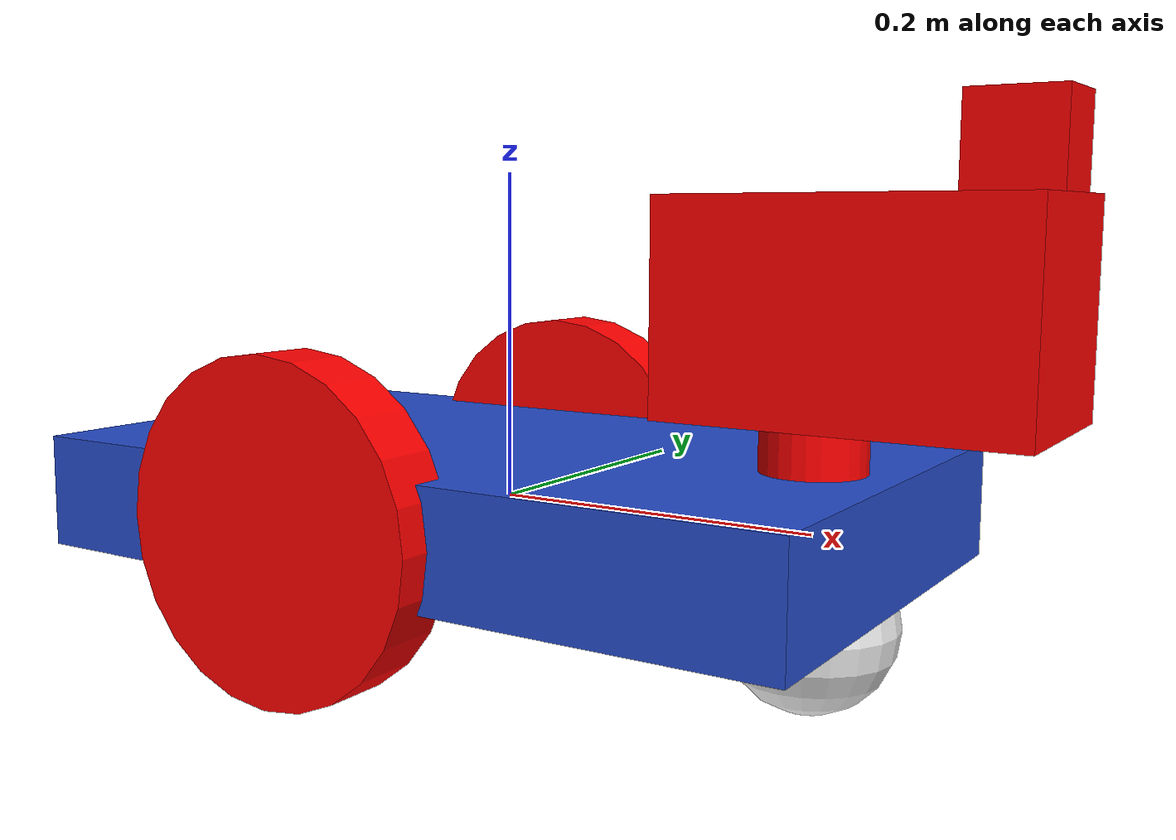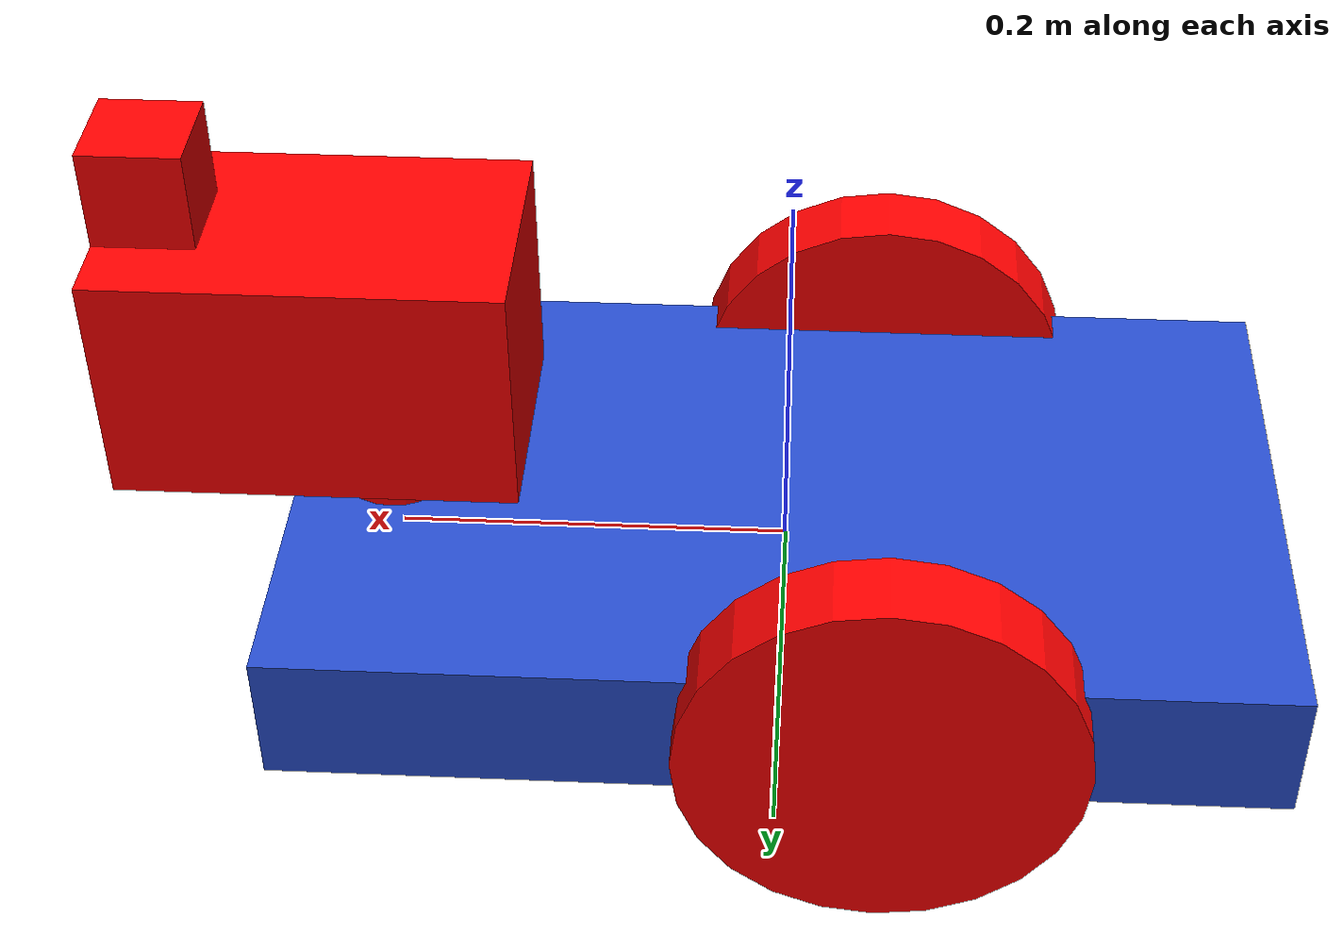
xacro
<?xml version="1.0"?>
<robot xmlns:xacro="http://www.ros.org/wiki/xacro" name="robot_xacro">
  <xacro:include filename="$(find exp_assignment2)/urdf/robot.gazebo" />

  <xacro:property name="length_wheel" value="0.04" />
  <xacro:property name="radius_wheel" value="0.1" />
  <xacro:property name="neck_length" value="0.05" />
  <xacro:property name="neck_radius" value="0.03" />

  <xacro:macro name="default_inertial" params="mass">
    <inertial>
      <mass value="${mass}" />
      <origin rpy="0 1.5707 1.5707" xyz="0 0 0" />
      <inertia ixx="0.000526666666667" ixy="0" ixz="0" iyy="0.000526666666667" iyz="0" izz="0.001" />
    </inertial>
  </xacro:macro>

  <xacro:macro name="wheel_geometry">
    <geometry>
      <cylinder length="${length_wheel}" radius="${radius_wheel}" />
    </geometry>
  </xacro:macro>

  <link name="link_chassis">
    <!-- pose and inertial -->
    <pose>0 0 0.1 0 0 0</pose>
    <inertial>
      <mass value="5" />
      <origin rpy="0 0 0" xyz="0 0 0.1" />
      <inertia ixx="0.0395416666667" ixy="0" ixz="0" iyy="0.106208333333" iyz="0" izz="0.106208333333" />
    </inertial>
    <!-- body -->
    <collision name="collision_chassis">
      <geometry>
        <box size="0.5 0.3 0.07" />
      </geometry>
    </collision>
    <visual>
      <origin rpy="0 0 0" xyz="0 0 0" />
      <geometry>
        <box size="0.5 0.3 0.07" />
      </geometry>
      <material name="blue" />
    </visual>
    <!-- caster front -->
    <collision name="caster_front_collision">
      <origin rpy=" 0 0 0" xyz="0.35 0 -0.05" />
      <geometry>
        <sphere radius="0.05" />
      </geometry>
    </collision>
    <visual name="caster_front_visual">
      <origin rpy=" 0 0 0" xyz="0.2 0 -0.05" />
      <geometry>
        <sphere radius="0.05" />
      </geometry>
    </visual>
  </link>

  <link name="link_right_wheel">
    <xacro:default_inertial mass="0.2" />
    <collision name="link_right_wheel_collision">
      <origin rpy="0 1.5707 1.5707" xyz="0 0 0" />
      <xacro:wheel_geometry />
    </collision>
    <visual name="link_right_wheel_visual">
      <origin rpy="0 1.5707 1.5707" xyz="0 0 0" />
      <xacro:wheel_geometry />
      <material name="red" />
    </visual>
  </link>

  <link name="link_left_wheel">
    <xacro:default_inertial mass="0.2" />
    <collision name="link_left_wheel_collision">
      <origin rpy="0 1.5707 1.5707" xyz="0 0 0" />
      <xacro:wheel_geometry />
    </collision>
    <visual name="link_left_wheel_visual">
      <origin rpy="0 1.5707 1.5707" xyz="0 0 0" />
      <xacro:wheel_geometry />
      <material name="red" />
    </visual>
  </link>

  <joint name="joint_right_wheel" type="continuous">
    <origin rpy="0 0 0" xyz="-0.05 0.15 0" />
    <child link="link_right_wheel" />
    <parent link="link_chassis" />
    <axis rpy="0 0 0" xyz="0 1 0" />
    <limit effort="10000" velocity="1000" />
    <joint_properties damping="1.0" friction="1.0" />
  </joint>

  <joint name="joint_left_wheel" type="continuous">
    <origin rpy="0 0 0" xyz="-0.05 -0.15 0" />
    <child link="link_left_wheel" />
    <parent link="link_chassis" />
    <axis rpy="0 0 0" xyz="0 1 0" />
    <limit effort="10000" velocity="1000" />
    <joint_properties damping="1.0" friction="1.0" />
  </joint>

  <link name="neck_link">
    <xacro:default_inertial mass="0.05" />
    <visual>
      <origin xyz="0 0 ${neck_length/2}" rpy="0 0 0" />
      <geometry>
        <cylinder length="${neck_length}" radius="${neck_radius}" />
      </geometry>
      <material name="red" />
    </visual>

    <collision>
      <origin xyz="0 0 ${neck_length/2}" rpy="0 0 0" />
      <geometry>
        <cylinder length="${neck_length}" radius="${neck_radius}" />
      </geometry>
    </collision>
  </link>

  <joint name="neck_joint" type="fixed">
    <axis xyz="0 1 0" />
    <origin xyz="0.2 0.0 0.015" rpy="0 0 0" />
    <parent link="link_chassis" />
    <child link="neck_link" />
  </joint>

  <!-- head definition -->

  <link name="head_link">
    <xacro:default_inertial mass="0.2" />
    <collision>
      <origin xyz="0 0 0.06" rpy="0 0 0" /> <!-- frame moved to the base of the head -->
      <geometry>
        <box size="0.2 0.12 0.12" />
      </geometry>
    </collision>
    <visual>
      <origin xyz="0 0 0.06" rpy="0 0 0" /> <!-- frame moved to the base of the head -->
      <geometry>
        <box size="0.2 0.12 0.12" />
      </geometry>
      <material name="red" />
    </visual>
  </link>

  <joint name="head_joint" type="revolute">
    <axis xyz="0 0 1" />
    <limit effort="1000.0" lower="-1.8" upper="1.8" velocity="0.5" />
    <origin rpy="0 0 0" xyz="0.03 0 ${neck_length}" />
    <parent link="neck_link" />
    <child link="head_link" />
  </joint>

  <!-- transmission -->

  <transmission name="head_joint_trans">
    <type>transmission_interface/SimpleTransmission</type>
    <joint name="head_joint">
      <hardwareInterface>hardware_interface/EffortJointInterface</hardwareInterface>
    </joint>
    <actuator name="motor1">
      <hardwareInterface>hardware_interface/EffortJointInterface</hardwareInterface>
      <mechanicalInterface>1</mechanicalInterface>
    </actuator>
  </transmission>

  <link name="camera_link">
    <collision>
      <origin xyz="0 0 0" rpy="0 0 0" />
      <geometry>
        <box size="0.05 0.05 0.05" />
      </geometry>
    </collision>
    <visual>
      <origin xyz="0 0 0" rpy="0 0 0" />
      <geometry>
        <box size="0.05 0.05 0.05" />
      </geometry>
      <material name="red">
        <color rgba="1 0 0 1" />
      </material>
    </visual>
    <inertial>
      <mass value="1e-5" />
      <origin xyz="0 0 0" rpy="0 0 0" />
      <inertia ixx="1e-6" ixy="0" ixz="0" iyy="1e-6" iyz="0" izz="1e-6" />
    </inertial>
  </link>

  <joint name="camera_joint" type="fixed">
    <axis xyz="0 1 0" />
    <origin xyz="0.075 0 0.145" rpy="0 0 0" />
    <parent link="head_link" />
    <child link="camera_link" />
  </joint>

</robot>
